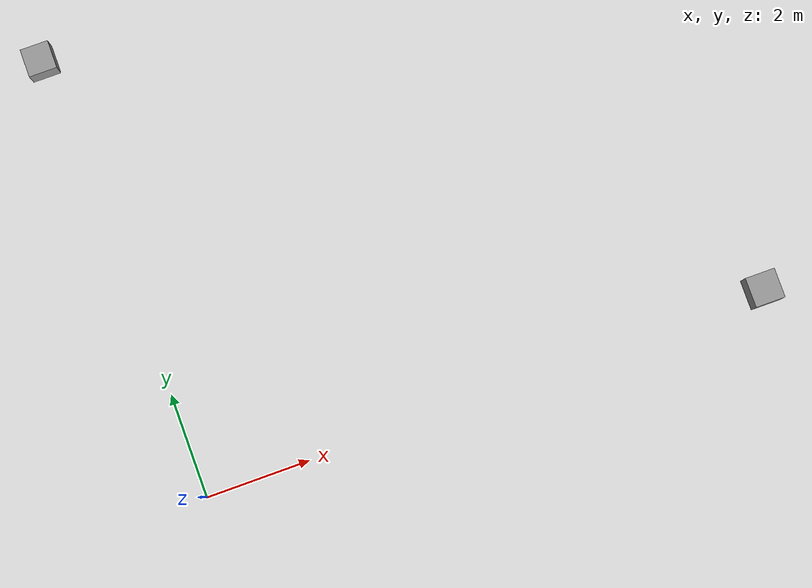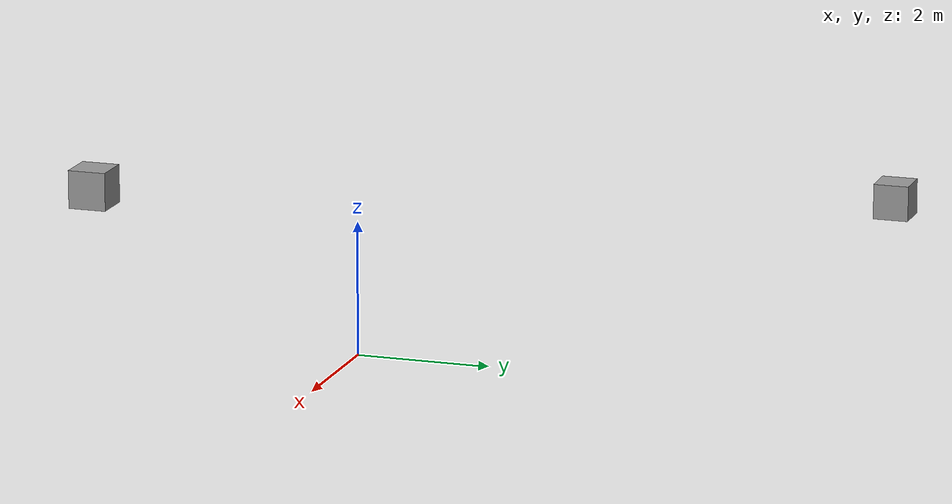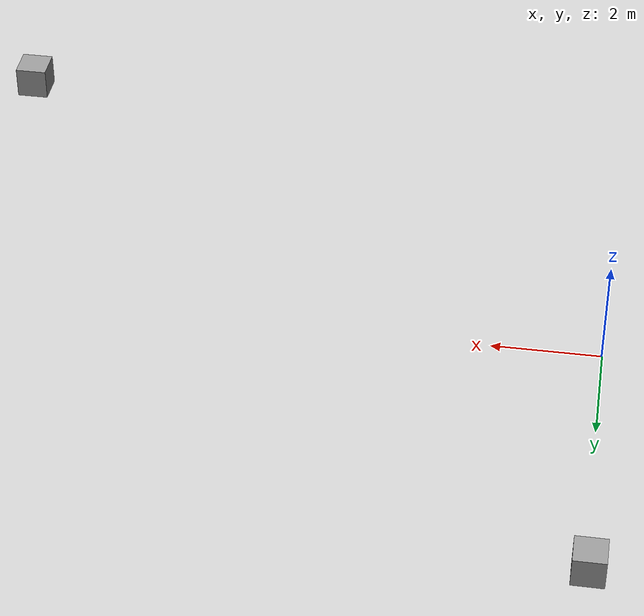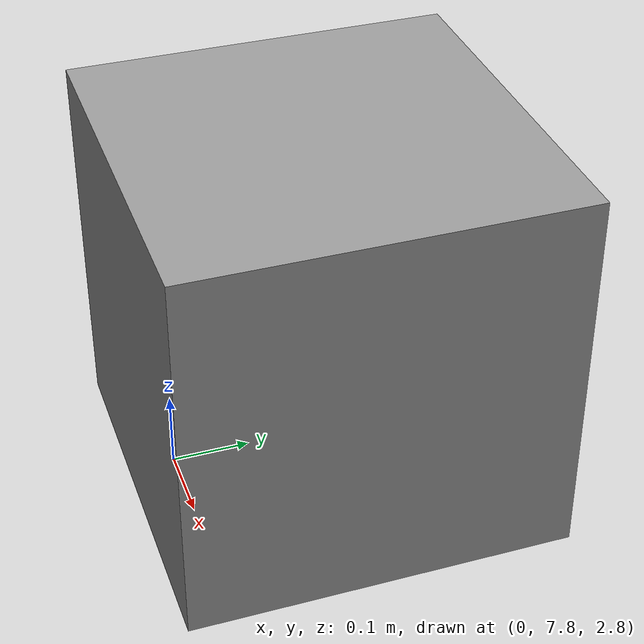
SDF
<sdf version="1.4">
  <world name="default">
    <!-- A global light source -->
    <include>
      <uri>model://sun</uri>
    </include>

    <spherical_coordinates>
      <world_orientation>ENU</world_orientation>
      <surface_model>EARTH_WGS84</surface_model>
      <latitude_deg>37.4</latitude_deg>
      <longitude_deg>-122.1</longitude_deg>
      <elevation>0.0</elevation>
      <heading_deg>0</heading_deg>
    </spherical_coordinates>

   <!-- add GetWorldToENUTransform(),
            GetWorldToNEDTransform(), etc.
        e.g. imu defined in NED, then
        world to imu frame transform is given by GetWorldToNEDTransform().
    -->

    <model name="pendulum_x">
      <pose>0 0 5.0  0 0 0</pose>
      <joint name="pin" type="revolute">
        <pose>-10 0 0  0 0 0</pose>
        <parent>world</parent>
        <child>link_x</child>
        <axis>
          <xyz>0 1 0</xyz>
        </axis>
      </joint>
      <link name="link_x">
        <pose>10.0 0 0  0 0 0</pose>
        <collision name="collision_box">
          <geometry>
            <box>
              <size>0.5 0.5 0.5</size>
            </box>
          </geometry>
        </collision>
        <visual name="visual_box">
          <geometry>
            <box>
              <size>0.5 0.5 0.5</size>
            </box>
          </geometry>
          <material>
            <script>
              <uri>file://media/materials/scripts/gazebo.material</uri>
              <name>Gazebo/Grey</name>
            </script>
          </material>
        </visual>
        <sensor name="gps" type="gps">
          <pose>0 0 0  0 0 0</pose>
          <update_rate>10.0</update_rate>
          <always_on>true</always_on>
          <gps>
            <position_sensing>
              <horizontal>
                <noise type="gaussian_quantized">
                  <mean>0</mean>
                  <stddev>1</stddev>
                  <bias_mean>3</bias_mean>
                  <bias_stddev>1</bias_stddev>
                  <precision>0.5</precision>
                </noise>
              </horizontal>
              <vertical>
                <noise type="gaussian_quantized">
                  <mean>0</mean>
                  <stddev>1</stddev>
                  <bias_mean>3</bias_mean>
                  <bias_stddev>1</bias_stddev>
                  <precision>1.0</precision>
                </noise>
              </vertical>
            </position_sensing>
            <velocity_sensing>
              <horizontal>
                <noise type="gaussian_quantized">
                  <mean>0</mean>
                  <stddev>0.1</stddev>
                  <bias_mean>0.1</bias_mean>
                  <bias_stddev>0.1</bias_stddev>
                  <precision>0.1</precision>
                </noise>
              </horizontal>
              <vertical>
                <noise type="gaussian_quantized">
                  <mean>0</mean>
                  <stddev>0.2</stddev>
                  <bias_mean>0.2</bias_mean>
                  <bias_stddev>0.2</bias_stddev>
                  <precision>0.2</precision>
                </noise>
              </vertical>
            </velocity_sensing>
          </gps>
        </sensor>
      </link>
    </model>

    <model name="pendulum_y">
      <pose>0 0 3.0  0 0 0</pose>
      <joint name="pin" type="revolute">
        <pose>0 -8 0  0 0 0</pose>
        <parent>world</parent>
        <child>link_y</child>
        <axis>
          <xyz>1 0 0</xyz>
        </axis>
      </joint>
      <link name="link_y">
        <pose>0 8.0 0  0 0 0</pose>
        <collision name="collision_box">
          <geometry>
            <box>
              <size>0.5 0.5 0.5</size>
            </box>
          </geometry>
        </collision>
        <visual name="visual_box">
          <geometry>
            <box>
              <size>0.5 0.5 0.5</size>
            </box>
          </geometry>
          <material>
            <script>
              <uri>file://media/materials/scripts/gazebo.material</uri>
              <name>Gazebo/Grey</name>
            </script>
          </material>
        </visual>
        <sensor name="gps" type="gps">
          <pose>0 0 0  0 0 0</pose>
          <update_rate>10.0</update_rate>
          <always_on>true</always_on>
          <gps>
            <position_sensing>
              <horizontal>
                <noise type="gaussian_quantized">
                  <mean>0</mean>
                  <stddev>1</stddev>
                  <bias_mean>3</bias_mean>
                  <bias_stddev>1</bias_stddev>
                  <precision>0.5</precision>
                </noise>
              </horizontal>
              <vertical>
                <noise type="gaussian_quantized">
                  <mean>0</mean>
                  <stddev>1</stddev>
                  <bias_mean>3</bias_mean>
                  <bias_stddev>1</bias_stddev>
                  <precision>1.0</precision>
                </noise>
              </vertical>
            </position_sensing>
            <velocity_sensing>
              <horizontal>
                <noise type="gaussian_quantized">
                  <mean>0</mean>
                  <stddev>0.1</stddev>
                  <bias_mean>0.1</bias_mean>
                  <bias_stddev>0.1</bias_stddev>
                  <precision>0.1</precision>
                </noise>
              </horizontal>
              <vertical>
                <noise type="gaussian_quantized">
                  <mean>0</mean>
                  <stddev>0.2</stddev>
                  <bias_mean>0.2</bias_mean>
                  <bias_stddev>0.2</bias_stddev>
                  <precision>0.2</precision>
                </noise>
              </vertical>
            </velocity_sensing>
          </gps>
        </sensor>
      </link>
    </model>
  </world>
</sdf>
